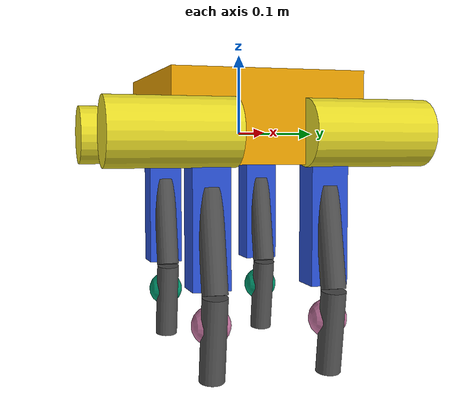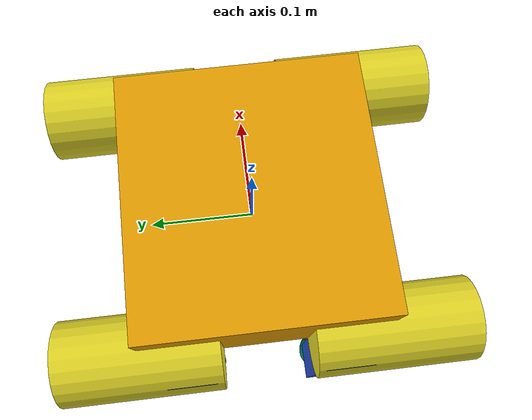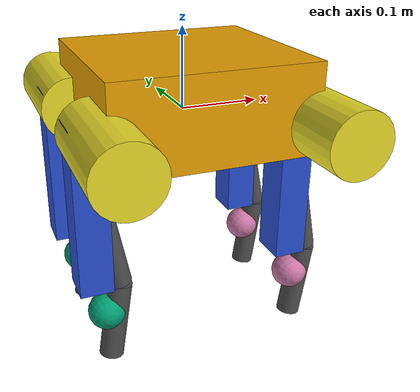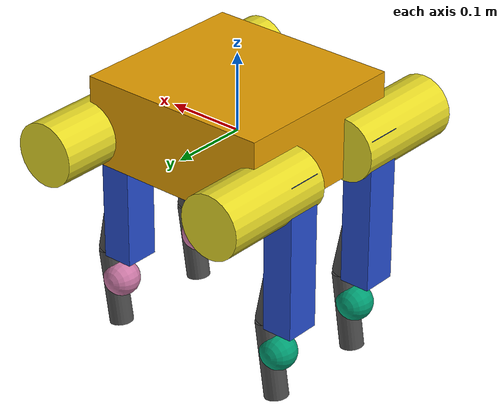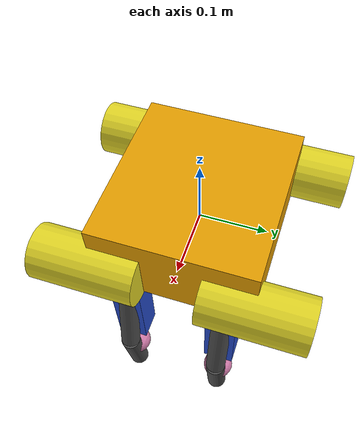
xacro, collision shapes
<?xml version="1.0"?>
<robot name="dog" xmlns:xacro="http://www.ros.org/wiki/xacro">

    <xacro:arg name="is_sim" default="true"/>

    <xacro:include filename="./const.xacro"/>
    <xacro:include filename="./ros2_control.xacro"/>
    <xacro:include filename="./leg.xacro"/>

    <link name="TORSO">
        <inertial>
            <origin xyz="${torso_com_x} ${torso_com_y} ${torso_com_z}"/>
            <mass value="${torso_mass}"/>
            <inertia ixx="${torso_ixx}" ixy="0" ixz="0" iyy="${torso_iyy}" iyz="0" izz="${torso_izz}"/>
        </inertial>
        <visual>
            <geometry>
                <mesh filename="${mesh_path}/torso.STL"/>
            </geometry>
        </visual>
        <collision>
          <origin xyz="0 0 0.018"/>
          <geometry>
            <box size="0.25 0.232 0.11"/>
          </geometry>
        </collision>
    </link>

    <link name="imu_link">
        <inertial>
            <mass value="0.1"/>
            <origin xyz="0 0 0" rpy="0 0 0"/>
            <inertia ixx="0.001" ixy="0.0" ixz="0.0" iyy="0.001" iyz="0.0" izz="0.001"/>
        </inertial>
    </link>

    <joint name="imu_joint" type="fixed">
        <parent link="TORSO"/>
        <child link="imu_link"/>
        <origin xyz="0 0 0" rpy="0 0 0"/>
    </joint>
    <gazebo reference="imu_joint">
            <preserveFixedJoint>true</preserveFixedJoint>
    </gazebo>

    <link name="base_link"/>
    <joint name="base_joint" type="fixed">
        <parent link="base_link"/>
        <child link="TORSO"/>
        <origin xyz="0 0 0" rpy="0 0 0"/>
    </joint>

    <xacro:dog_leg name="LF" mirror="1" f_b="1"/>
    <xacro:dog_leg name="LH" mirror="1" f_b="-1"/>
    <xacro:dog_leg name="RF" mirror="-1" f_b="1"/>
    <xacro:dog_leg name="RH" mirror="-1" f_b="-1"/>

    <ros2_control name="dog_System" type="system">
        <hardware>
            <xacro:if value="$(arg is_sim)">
                <plugin>dog_hardware/DogGazeboHW</plugin>
                <param name="delay">${cfg['controller_manager']['ros__parameters']['hw_params']['delay']}</param>
            </xacro:if>
            <xacro:unless value="$(arg is_sim)">
                <plugin>dog_hardware/J60_6_hw</plugin>
            </xacro:unless>
        </hardware>

        <sensor name="imu_sensor">
            <state_interface name="orientation.x"/>
            <state_interface name="orientation.y"/>
            <state_interface name="orientation.z"/>
            <state_interface name="orientation.w"/>
            <state_interface name="angular_velocity.x"/>
            <state_interface name="angular_velocity.y"/>
            <state_interface name="angular_velocity.z"/>
            <state_interface name="linear_acceleration.x"/>
            <state_interface name="linear_acceleration.y"/>
            <state_interface name="linear_acceleration.z"/>
        </sensor>

        <sensor name="LF_contact_sensor"> <state_interface name="contact"/></sensor>
        <sensor name="RF_contact_sensor"> <state_interface name="contact"/></sensor>
        <sensor name="LH_contact_sensor"> <state_interface name="contact"/></sensor>
        <sensor name="RH_contact_sensor"> <state_interface name="contact"/></sensor>

        <xacro:leg_control_interface name="LF"/>
        <xacro:leg_control_interface name="RF"/>
        <xacro:leg_control_interface name="LH"/>
        <xacro:leg_control_interface name="RH"/>
    </ros2_control>

    <xacro:if value="$(arg is_sim)">
        <gazebo reference="imu_link">
          <sensor name="imu_sensor" type="imu">
            <always_on>true</always_on>
            <update_rate>1000</update_rate>
          </sensor>
        </gazebo>

        <gazebo>
            <plugin filename="libgazebo_ros2_control.so" name="gazebo_ros2_control">
                <parameters>$(find dog_bringup)/config/cdut_dog/robot_controllers.yaml</parameters>
                <robot_param>robot_description</robot_param>
                <robot_param_node>robot_state_publisher</robot_param_node>
            </plugin>
        </gazebo>
        <gazebo>
          <plugin name="dog_ground_truth" filename="libgazebo_ros_p3d.so">
            <ros>
              <remapping>odom:=/ground_truth</remapping>
            </ros>
            <body_name>base_link</body_name>
            <frame_name>world</frame_name>
            <update_rate>10.0</update_rate>
            <xyz_offset>0 0 0</xyz_offset>
            <rpy_offset>0 0 0</rpy_offset>
            <gaussian_noise>0.001</gaussian_noise>
          </plugin>
        </gazebo>
    </xacro:if>
</robot>

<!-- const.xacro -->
<robot xmlns:xacro="http://www.ros.org/wiki/xacro">
    <!-- xacro ./dog.xacro > dog.urdf -->
    <xacro:property name="mesh_path" value="package://dog_bringup/meshes/cdut_dog"/>
    <xacro:property name="cfg" value="${xacro.load_yaml('$(find dog_bringup)/config/cdut_dog/robot_controllers.yaml')}"/>

<!-- 躯干参数 -->
<xacro:property name="torso_mass" value="5.35"/>        <!-- 躯干质量(kg) -->
<xacro:property name="torso_com_x" value="0"/>            <!-- 躯干质心x轴坐标(m) -->
<xacro:property name="torso_com_y" value="0"/>            <!-- 躯干质心y轴坐标(m) -->
<xacro:property name="torso_com_z" value="0"/>            <!-- 躯干质心z轴坐标(m) -->
<xacro:property name="torso_ixx" value="0.014"/>        <!-- 躯干绕x轴转动惯量(kg·m²) -->
<xacro:property name="torso_iyy" value="0.014"/>        <!-- 躯干绕y轴转动惯量(kg·m²) -->
<xacro:property name="torso_izz" value="0.023333"/>        <!-- 躯干绕z轴转动惯量(kg·m²) -->

<xacro:property name="damping" value="0.05"/>             <!-- 阻尼系数 -->
<xacro:property name="friction" value="0.01"/>            <!-- 摩擦系数 -->
<!-- 髋关节参数 -->
<xacro:property name="hip_mass" value="0.53"/>           <!-- 髋关节质量(kg) -->
<xacro:property name="hip_com_x" value="0.043209"/>       <!-- 髋关节质心x轴坐标(m) -->
<xacro:property name="hip_com_y" value="-0.023751"/>      <!-- 髋关节质心y轴坐标(m) -->
<xacro:property name="hip_com_z" value="-0.000382"/>      <!-- 髋关节质心z轴坐标(m) -->
<xacro:property name="hip_ixx" value="0.000266"/>        <!-- 髋关节绕x轴转动惯量(kg·m²) -->
<xacro:property name="hip_iyy" value="0.000294"/>        <!-- 髋关节绕y轴转动惯量(kg·m²) -->
<xacro:property name="hip_izz" value="0.000288"/>        <!-- 髋关节绕z轴转动惯量(kg·m²) -->

<!-- 大腿参数 -->
<xacro:property name="thigh_mass" value="0.75"/>          <!-- 大腿质量(kg) -->
<xacro:property name="thigh_com_x" value="-0.000382"/>    <!-- 大腿质心x轴坐标(m) -->
<xacro:property name="thigh_com_y" value="0.064016"/>     <!-- 大腿质心y轴坐标(m) -->
<xacro:property name="thigh_com_z" value="-0.009246"/>    <!-- 大腿质心z轴坐标(m) -->
<xacro:property name="thigh_ixx" value="0.00041"/>       <!-- 大腿绕x轴转动惯量(kg·m²) -->
<xacro:property name="thigh_iyy" value="0.001228"/>       <!-- 大腿绕y轴转动惯量(kg·m²) -->
<xacro:property name="thigh_izz" value="0.000988"/>       <!-- 大腿绕z轴转动惯量(kg·m²) -->

<!-- 小腿参数 -->
<xacro:property name="shank_mass" value="0.084"/>         <!-- 小腿质量(kg) -->
<xacro:property name="shank_com_x" value="0.075085"/>     <!-- 小腿质心x轴坐标(m) -->
<xacro:property name="shank_com_y" value="0.000631"/>     <!-- 小腿质心y轴坐标(m) -->
<xacro:property name="shank_com_z" value="-0.027403"/>    <!-- 小腿质心z轴坐标(m) -->
<xacro:property name="shank_ixx" value="0.001"/>     <!-- 小腿绕x轴转动惯量(kg·m²) -->
<xacro:property name="shank_iyy" value="0.001"/>     <!-- 小腿绕y轴转动惯量(kg·m²) -->
<xacro:property name="shank_izz" value="0.001"/>    <!-- 小腿绕z轴转动惯量(kg·m²) -->

<!-- 脚部参数 -->
<xacro:property name="foot_mass" value="0.059"/>           <!-- 脚部质量(kg) -->
<xacro:property name="foot_radius" value="0.023"/>        <!-- 脚部半径(m) -->
<xacro:property name="foot_com_x" value="0.001491"/>      <!-- 小腿质心x轴坐标(m) -->
<xacro:property name="foot_com_y" value="-0.000261"/>     <!-- 小腿质心y轴坐标(m) -->
<xacro:property name="foot_com_z" value="0.013164"/>      <!-- 小腿质心z轴坐标(m) -->
<xacro:property name="foot_ixx" value="0.000015"/>          <!-- 脚部绕x轴转动惯量(kg·m²) -->
<xacro:property name="foot_iyy" value="0.000016"/>          <!-- 脚部绕y轴转动惯量(kg·m²) -->
<xacro:property name="foot_izz" value="0.000014"/>          <!-- 脚部绕z轴转动惯量(kg·m²) -->

<!-- 关节位置偏移参数 -->
<xacro:property name="hip_offset_x" value="0.12556"/>    <!-- 髋关节x轴方向偏移量(m) -->
<xacro:property name="hip_offset_y" value="0.06752"/>     <!-- 髋关节y轴方向偏移量(m) -->
<xacro:property name="hip_offset_z" value="0.007"/>     <!-- 髋关节z轴方向偏移量(m) -->

<xacro:property name="thigh_offset_x" value="0.0485"/>    <!-- 大腿x轴方向偏移量(m) -->
<xacro:property name="thigh_offset_y" value="0.004"/>    <!-- 大腿y轴方向偏移量(m) -->
<xacro:property name="thigh_offset_z" value="0"/>     <!-- 大腿z轴方向偏移量(m) -->

<xacro:property name="shank_offset_x" value="-0.176118"/>   <!-- 小腿x轴方向偏移量(m) -->
<xacro:property name="shank_offset_y" value="0.09439"/>   <!-- 小腿y轴方向偏移量(m) -->
<xacro:property name="shank_offset_z" value="-0.09319"/>     <!-- 小腿z轴方向偏移量(m) -->

<xacro:property name="foot_offset_x" value="0.183238"/>    <!-- 脚部x轴方向偏移量(m) -->
<xacro:property name="foot_offset_y" value="0.002132"/>   <!-- 脚部y轴方向偏移量(m) -->
<xacro:property name="foot_offset_z" value="-0.125966"/>   <!-- 脚部z轴方向偏移量(m) -->

<!-- 髋关节x轴关节限位&性能参数 -->
<xacro:property name="hipx_min" value="-0.5"/>          <!-- 髋x轴关节最小角度(rad，约-30°) -->
<xacro:property name="hipx_max" value="0.5"/>           <!-- 髋x轴关节最大角度(rad，约30°) -->
<xacro:property name="hipx_vel" value="26.2"/>            <!-- 髋x轴关节最大角速度(rad/s) -->
<xacro:property name="hipx_eff" value="12"/>              <!-- 髋x轴关节最大力矩(N·m) -->

<!-- 髋关节y轴关节限位&性能参数 -->
<xacro:property name="hipy_min" value="-2"/>           <!-- 髋y轴关节最小角度(rad) -->
<xacro:property name="hipy_max" value="1.6"/>           <!-- 髋y轴关节最大角度(rad，约18°) -->
<xacro:property name="hipy_vel" value="26.2"/>            <!-- 髋y轴关节最大角速度(rad/s) -->
<xacro:property name="hipy_eff" value="12"/>              <!-- 髋y轴关节最大力矩(N·m) -->

<!-- 膝关节限位&性能参数 -->
<xacro:property name="knee_min" value="-2"/>           <!-- 膝关节最小角度(rad，约30°) -->
<xacro:property name="knee_max" value="0.5"/>           <!-- 膝关节最大角度(rad，约160°) -->
<xacro:property name="knee_vel" value="17.3"/>            <!-- 膝关节最大角速度(rad/s) -->
<xacro:property name="knee_eff" value="30"/>              <!-- 膝关节最大力矩(N·m) -->

</robot>

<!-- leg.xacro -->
<robot xmlns:xacro="http://www.ros.org/wiki/xacro">

    <xacro:macro name="dog_leg" params="name mirror f_b">

        <link name="${name}_HIP">
            <inertial>
                <origin xyz="${hip_com_x} ${mirror * hip_com_y} ${hip_com_z}"/>
                <mass value="${hip_mass}"/>
                <inertia ixx="${hip_ixx}" ixy="0" ixz="0" iyy="${hip_iyy}" iyz="0" izz="${hip_izz}"/>
            </inertial>
            <visual>
                <geometry>
                    <mesh filename="${mesh_path}/hip.STL" scale="${f_b} ${mirror} 1"/>
                </geometry>
            </visual>
            <collision>
                <origin xyz="0 ${mirror * 0.05} 0" rpy="1.57079632 0 0"/>
                <geometry>
                    <cylinder length="0.15" radius="0.04"/>
                </geometry>
            </collision>
        </link>

        <joint name="${name}_HAA" type="revolute">
            <origin xyz="${f_b * hip_offset_x} ${mirror * hip_offset_y} 0"/>
            <parent link="TORSO"/>
            <child link="${name}_HIP"/>
            <axis xyz="-1 0 0"/>
            <limit lower="${hipx_min}" upper="${hipx_max}" effort="${hipx_eff}" velocity="${hipx_vel}"/>
            <dynamics damping="${damping}" friction="${friction}"/>
        </joint>

        <link name="${name}_THIGH">
            <inertial>
                <origin xyz="${thigh_com_x} ${mirror * thigh_com_y} ${thigh_com_z}"/>
                <mass value="${thigh_mass}"/>
                <inertia ixx="${thigh_ixx}" ixy="0" ixz="0" iyy="${thigh_iyy}" iyz="0" izz="${thigh_izz}"/>
            </inertial>
            <visual>
                <geometry>
                    <mesh filename="${mesh_path}/thigh.STL" scale="1 ${mirror} 1"/>
                </geometry>
            </visual>
            <collision>
                <origin xyz="-0.015 0 -0.08" />
                <geometry>
                    <box size="0.04 0.045 0.2"/>
                </geometry>
            </collision>
        </link>

        <joint name="${name}_HFE" type="revolute">
            <origin xyz="0 ${mirror * thigh_offset_y} 0"/>
            <parent link="${name}_HIP"/>
            <child link="${name}_THIGH"/>
            <axis xyz="0 -1 0"/>
            <limit lower="${hipy_min}" upper="${hipy_max}" effort="${hipy_eff}" velocity="${hipy_vel}"/>
            <dynamics damping="${damping}" friction="${friction}"/>
        </joint>

        <link name="${name}_SHANK">
            <inertial>
                <origin xyz="${shank_com_x} ${shank_com_y} ${shank_com_z}"/>
                <mass value="${shank_mass}"/>
                <inertia ixx="${shank_ixx}" ixy="0" ixz="0" iyy="${shank_iyy}" iyz="0" izz="${shank_izz}"/>
            </inertial>
            <visual>
                <geometry>
                    <mesh filename="${mesh_path}/shank.STL"/>
                </geometry>
            </visual>
            <collision>
                <origin xyz="0.005 0 -0.03" rpy="0 -0.2 0"/>
                <geometry>
                    <cylinder length="0.12" radius="0.015"/>
                </geometry>
            </collision>
            <collision>
                <origin xyz="0.01 0 -0.14" rpy="0 0.15 0"/>
                <geometry>
                    <cylinder length="0.10" radius="0.015"/>
                </geometry>
            </collision>
        </link>

        <joint name="${name}_KFE" type="revolute">
            <origin xyz="0 0 ${shank_offset_z}"/>
            <parent link="${name}_THIGH"/>
            <child link="${name}_SHANK"/>
            <axis xyz="0 -1 0"/>
            <limit lower="${knee_min}" upper="${knee_max}" effort="${knee_eff}" velocity="${knee_vel}"/>
            <dynamics damping="${damping}" friction="${friction}"/>
        </joint>

        <link name="${name}_FOOT">
            <collision name="${name}_FOOT_collision">
                <origin rpy="1.57079632679 0 0" />
                <geometry>
                    <sphere radius="${foot_radius}"/>
                </geometry>
            </collision>
            <inertial>
                <mass value="${foot_mass}"/>
                <inertia ixx="${foot_ixx}" ixy="0" ixz="0" iyy="${foot_iyy}" iyz="0" izz="${foot_izz}"/>
            </inertial>
        </link>

        <joint name="${name}_Ankle" type="fixed" dont_collapse="true">
            <parent link="${name}_SHANK"/>
            <child link="${name}_FOOT"/>
            <origin xyz="0 0 ${foot_offset_z}"/>
        </joint>

        <gazebo reference="${name}_Ankle">
            <preserveFixedJoint>true</preserveFixedJoint>
        </gazebo>

        <gazebo reference="${name}_HIP">
            <mu1>0.2</mu1>
            <mu2>0.2</mu2>
            <material>Gazebo/Yellow</material>
            <self_collide>1</self_collide>
        </gazebo>

        <gazebo reference="${name}_THIGH">
            <mu1>0.2</mu1>
            <mu2>0.2</mu2>
            <material>Gazebo/Blue</material>
            <self_collide>0</self_collide>
            <kp value="1000000.0"/>
            <kd value="100.0"/>
        </gazebo>

        <gazebo reference="${name}_SHANK">
            <mu1>0.6</mu1>
            <mu2>0.6</mu2>
            <material>Gazebo/DarkGrey</material>
            <self_collide>1</self_collide>
        </gazebo>

        <gazebo reference="${name}_FOOT">
            <mu1>0.6</mu1>
            <mu2>0.6</mu2>
            <kp>1000000.0</kp>
            <kd>100.0</kd>
            <minDepth>0.001</minDepth>
            <self_collide>1</self_collide>
            <sensor name="${name}_contact_sensor" type="contact">
              <always_on>true</always_on>
              <update_rate>1000</update_rate>
              <contact>
                <collision>${name}_FOOT_collision</collision>
              </contact>
            </sensor>
        </gazebo>

    </xacro:macro>
</robot>
